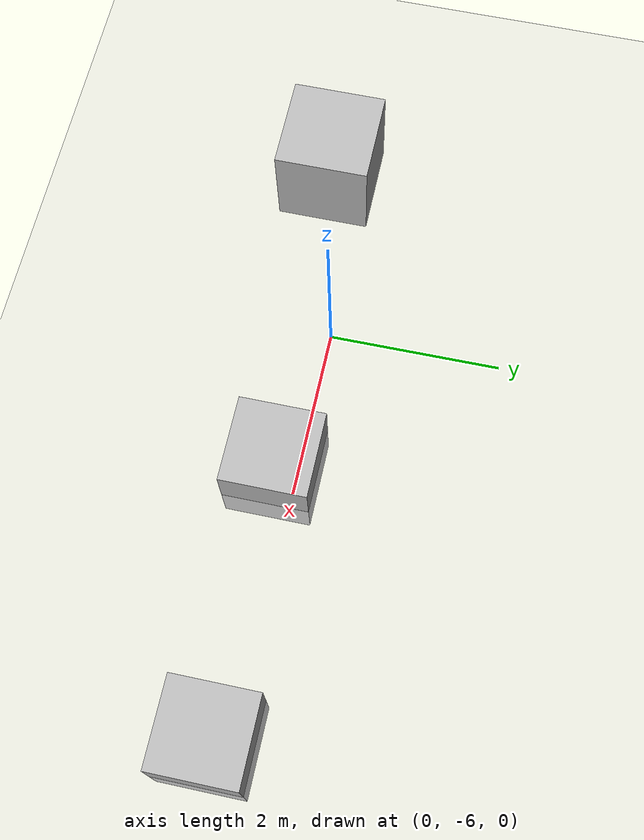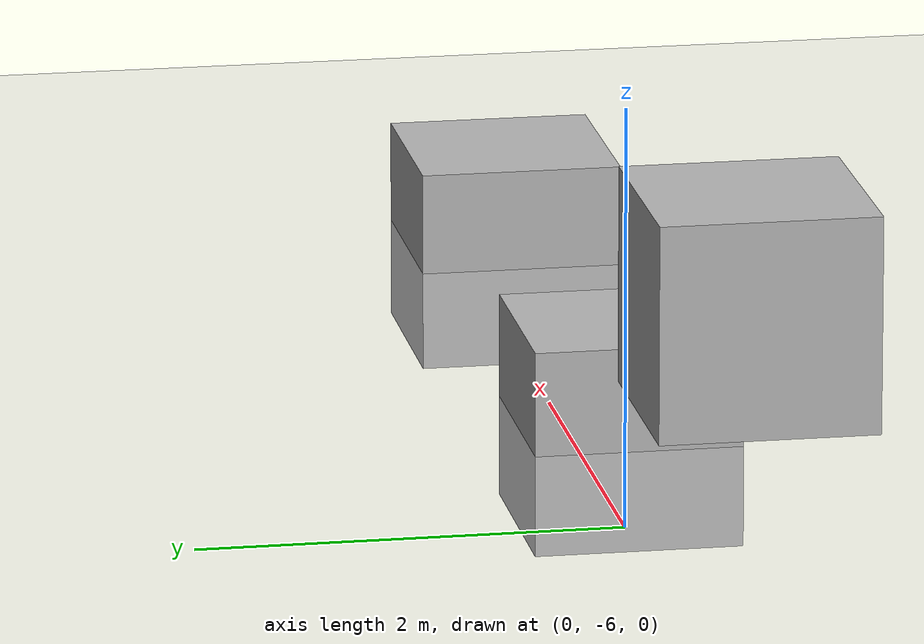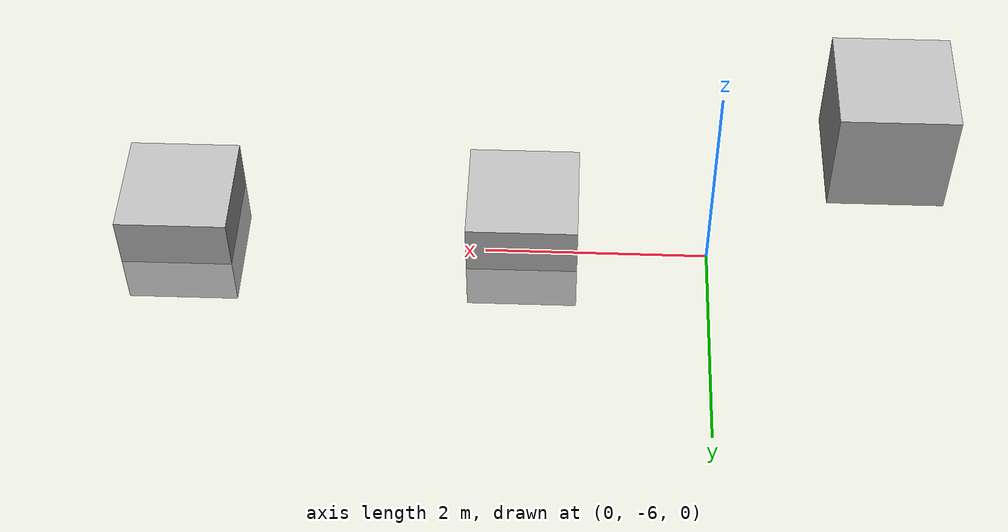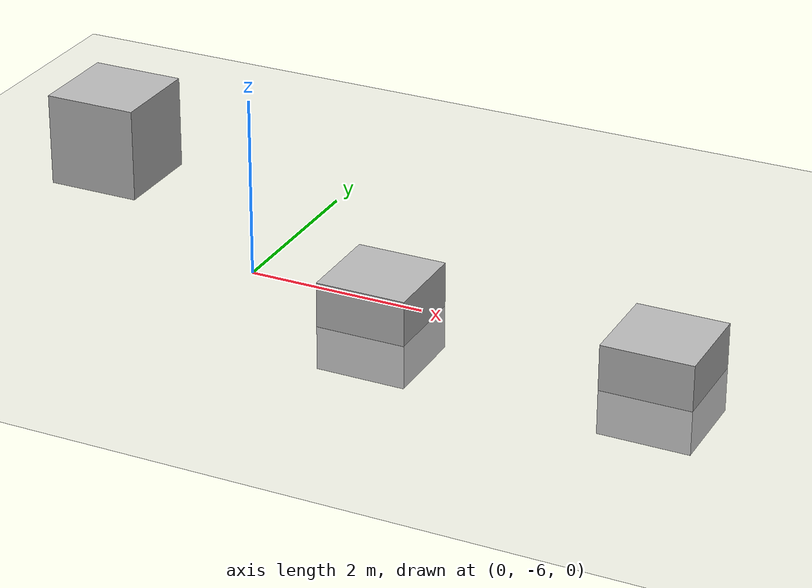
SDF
<sdf version="1.6">
 <world name="default">
  <light name="sun" type="directional">
   <pose>0 0 10 0 -0 0</pose>
   <diffuse>0.8 0.8 0.8 1</diffuse>
   <specular>0.1 0.1 0.1 1</specular>
   <attenuation>
    <range>1000</range>
    <constant>0.9</constant>
    <linear>0.01</linear>
    <quadratic>0.001</quadratic>
   </attenuation>
   <direction>-0.5 0.5 -1</direction>
  </light>
  <model name="ground_plane">
   <static>1</static>
   <link name="link">
    <collision name="collision">
     <geometry><plane><normal>0 0 1</normal><size>100 100</size></plane></geometry>
     <surface><friction><ode><mu>100</mu><mu2>50</mu2></ode></friction></surface>
    </collision>
    <visual name="visual">
     <cast_shadows>0</cast_shadows>
     <geometry><plane><normal>0 0 1</normal><size>100 100</size></plane></geometry>
     <material>
      <script><uri>file://media/materials/scripts/gazebo.material</uri><name>Gazebo/Grey</name></script>
     </material>
    </visual>
   </link>
  </model>
  <gravity>0 0 -9.8</gravity>
  <magnetic_field>6e-06 2.3e-05 -4.2e-05</magnetic_field>
  <atmosphere type="adiabatic"/>
  <physics name="default_physics" default="0" type="ode">
   <max_step_size>0.001</max_step_size>
   <real_time_factor>1</real_time_factor>
   <real_time_update_rate>1000</real_time_update_rate>
  </physics>
  <scene><ambient>0.4 0.4 0.4 1</ambient><background>0.7 0.7 0.7 1</background><shadows>1</shadows></scene>
  <spherical_coordinates>
   <surface_model>EARTH_WGS84</surface_model>
   <latitude_deg>0</latitude_deg>
   <longitude_deg>0</longitude_deg>
   <elevation>0</elevation>
   <heading_deg>0</heading_deg>
  </spherical_coordinates>
  <model name="brick_box_3x1x3">
   <static>1</static>
   <link name="chassis">
    <collision name="collision"><geometry><box><size>3 3 3</size></box></geometry></collision>
    <visual name="visual">
     <geometry><mesh><uri>model://brick_box_3x1x3/meshes/simple_box.dae</uri><scale>1 1 1</scale></mesh></geometry>
     <material>
      <script>
       <uri>model://brick_box_3x1x3/materials/scripts</uri>
       <uri>model://brick_box_3x1x3/materials/textures</uri>
       <name>BrickBox/Diffuse</name>
      </script>
     </material>
    </visual>
   </link>
   <pose>1.67206 -6.28667 0 0 -0 0</pose>
  </model>
  <model name="brick_box_3x1x3_0">
   <static>1</static>
   <link name="chassis">
    <pose>0 0 1.5 0 -0 0</pose>
    <collision name="collision"><geometry><box><size>3 1 3</size></box></geometry></collision>
    <visual name="visual">
     <geometry><mesh><uri>model://brick_box_3x1x3/meshes/simple_box.dae</uri><scale>1 1 1</scale></mesh></geometry>
     <material>
      <script>
       <uri>model://brick_box_3x1x3/materials/scripts</uri>
       <uri>model://brick_box_3x1x3/materials/textures</uri>
       <name>BrickBox/Diffuse</name>
      </script>
     </material>
    </visual>
   </link>
   <pose>-1.45593 -6.29018 0 0 -0 0</pose>
  </model>
  <model name="brick_box_3x1x3_1">
   <static>1</static>
   <link name="chassis">
    <collision name="collision"><geometry><box><size>3 1 3</size></box></geometry></collision>
    <visual name="visual">
     <geometry><mesh><uri>model://brick_box_3x1x3/meshes/simple_box.dae</uri><scale>1 1 1</scale></mesh></geometry>
     <material>
      <script>
       <uri>model://brick_box_3x1x3/materials/scripts</uri>
       <uri>model://brick_box_3x1x3/materials/textures</uri>
       <name>BrickBox/Diffuse</name>
      </script>
     </material>
    </visual>
   </link>
   <pose>4.79638 -6.26466 0 0 -0 0</pose>
  </model>
 </world>
</sdf>
